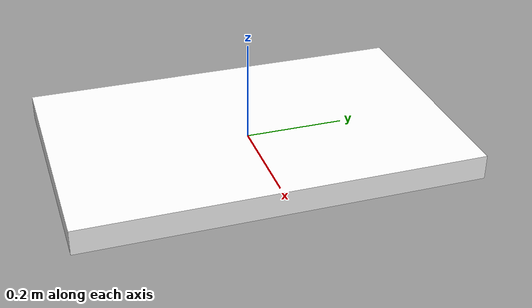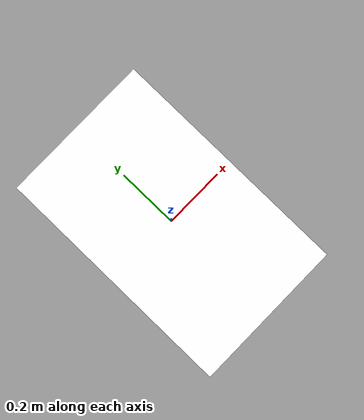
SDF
<?xml version="1.0" ?>
<sdf version="1.6">
  <model name="table_05cm">
    <static>true</static>
    <link name="link">
      <collision name="collision">
        <geometry>
          <box>
            <size>0.5 0.8 0.05</size>
          </box>
        </geometry>
      </collision>
      <visual name="visual">
        <geometry>
          <box>
            <size>0.5 0.8 0.05</size>
          </box>
        </geometry>
        <material>
          <ambient>1 1 1 1</ambient>
          <diffuse>1 1 1 1</diffuse>
        </material>
      </visual>
    </link>
  </model>
</sdf>
